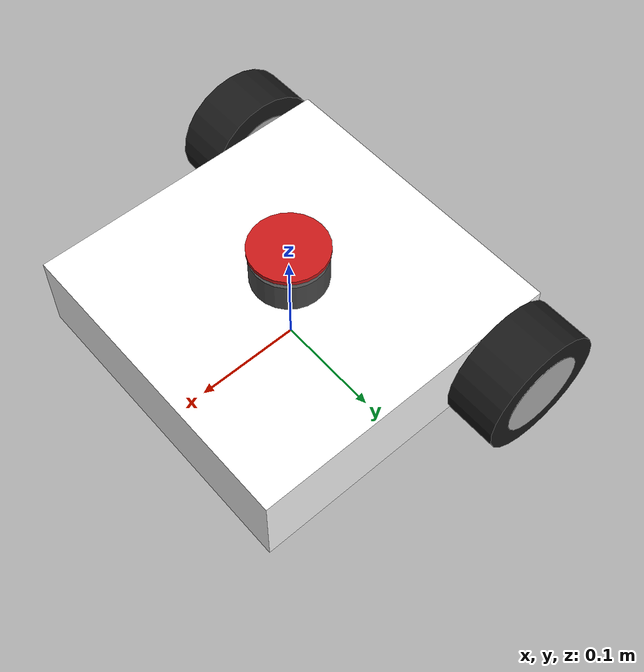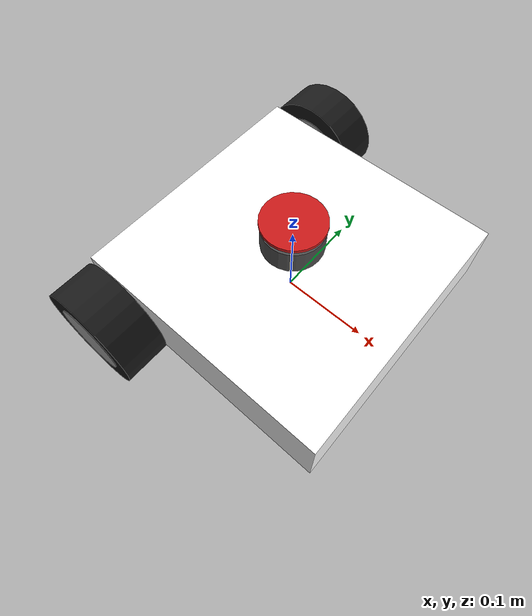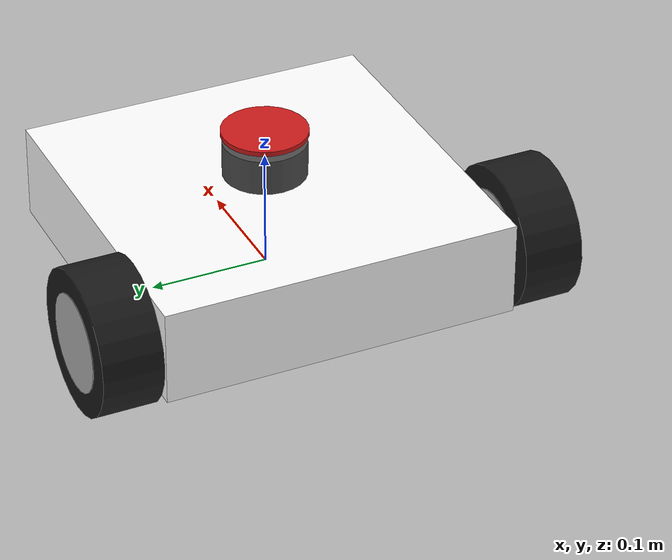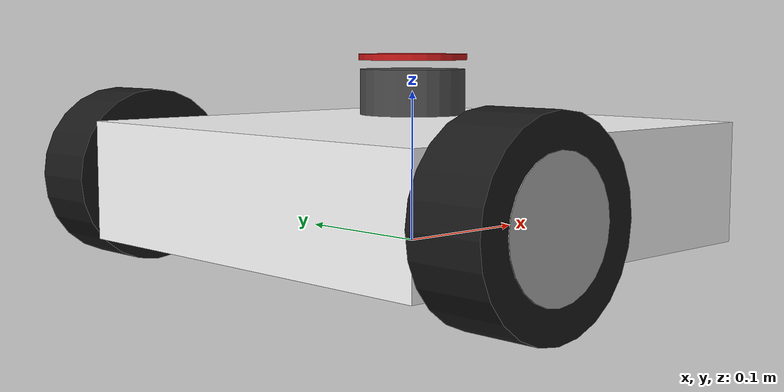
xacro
<?xml version="1.0"?>
<robot name="gslam_bot" xmlns:xacro="http://www.ros.org/wiki/xacro">

  <!-- ================= MATERIALS ================= -->
  <material name="white">  <color rgba="1.0 1.0 1.0 1.0"/> </material>
  <material name="black">  <color rgba="0.1 0.1 0.1 1.0"/> </material>
  <material name="dark_gray"> <color rgba="0.3 0.3 0.3 1.0"/> </material>
  <material name="silver"> <color rgba="0.7 0.7 0.7 1.0"/> </material>
  <material name="red">    <color rgba="0.8 0.1 0.1 1.0"/> </material>

  <!-- ================= BASE LINK ================= -->
  <link name="base_link">
    <inertial>
      <origin xyz="0 0 0.04" rpy="0 0 0"/>
      <mass value="1.5"/>
      <inertia ixx="0.02" ixy="0" ixz="0"
               iyy="0.02" iyz="0" izz="0.02"/>
    </inertial>
    <visual>
      <origin xyz="0 0 0.04" rpy="0 0 0"/>
      <geometry><box size="0.3 0.3 0.08"/></geometry>
      <material name="white"/>
    </visual>
    <visual>
      <origin xyz="0 0 0.06" rpy="0 0 0"/>
      <geometry><box size="0.25 0.25 0.02"/></geometry>
      <material name="silver"/>
    </visual>
    <visual>
      <origin xyz="0 0 0.02" rpy="0 0 0"/>
      <geometry><box size="0.25 0.25 0.02"/></geometry>
      <material name="silver"/>
    </visual>
    <collision>
      <origin xyz="0 0 0.04" rpy="0 0 0"/>
      <geometry><box size="0.3 0.3 0.08"/></geometry>
    </collision>
  </link>

  <!-- ================= LEFT WHEEL ================= -->
  <link name="left_wheel">
    <inertial>
      <origin xyz="0 0 0" rpy="0 0 0"/>
      <mass value="0.2"/>
      <inertia ixx="0.00025" ixy="0" ixz="0"
               iyy="0.00025" iyz="0" izz="0.00025"/>
    </inertial>
    <visual>
      <origin xyz="0 0 0" rpy="0 0 0"/>
      <geometry><cylinder radius="0.06" length="0.05"/></geometry>
      <material name="black"/>
    </visual>
    <visual>
      <origin xyz="0 0 0" rpy="0 0 0"/>
      <geometry><cylinder radius="0.04" length="0.051"/></geometry>
      <material name="silver"/>
    </visual>
    <collision>
      <origin xyz="0 0 0" rpy="0 0 0"/>
      <geometry><cylinder radius="0.06" length="0.05"/></geometry>
    </collision>
  </link>

  <!-- rpy="-1.5707 0 0" tilts cylinder so it lies flat as a wheel -->
  <!-- axis="0 0 1" is Y-axis rolling in the rotated child frame   -->
  <joint name="left_wheel_joint" type="continuous">
    <parent link="base_link"/>
    <child link="left_wheel"/>
    <origin xyz="-0.1 0.18 0.04" rpy="-1.5707 0 0"/>
    <axis xyz="0 0 1"/>
    <limit effort="10" velocity="10"/>
  </joint>

  <!-- ================= RIGHT WHEEL ================= -->
  <link name="right_wheel">
    <inertial>
      <origin xyz="0 0 0" rpy="0 0 0"/>
      <mass value="0.2"/>
      <inertia ixx="0.00025" ixy="0" ixz="0"
               iyy="0.00025" iyz="0" izz="0.00025"/>
    </inertial>
    <visual>
      <origin xyz="0 0 0" rpy="0 0 0"/>
      <geometry><cylinder radius="0.06" length="0.05"/></geometry>
      <material name="black"/>
    </visual>
    <visual>
      <origin xyz="0 0 0" rpy="0 0 0"/>
      <geometry><cylinder radius="0.04" length="0.051"/></geometry>
      <material name="silver"/>
    </visual>
    <collision>
      <origin xyz="0 0 0" rpy="0 0 0"/>
      <geometry><cylinder radius="0.06" length="0.05"/></geometry>
    </collision>
  </link>

  <joint name="right_wheel_joint" type="continuous">
    <parent link="base_link"/>
    <child link="right_wheel"/>
    <origin xyz="-0.1 -0.18 0.04" rpy="-1.5707 0 0"/>
    <axis xyz="0 0 1"/>
    <limit effort="10" velocity="10"/>
  </joint>

  <!-- ================= CASTER WHEELS ================= -->
  <link name="caster_wheel">
    <inertial>
      <origin xyz="0 0 0" rpy="0 0 0"/>
      <mass value="0.05"/>
      <inertia ixx="0.0001" ixy="0" ixz="0"
               iyy="0.0001" iyz="0" izz="0.0001"/>
    </inertial>
    <visual>
      <origin xyz="0 0 0" rpy="0 0 0"/>
      <geometry><sphere radius="0.025"/></geometry>
      <material name="dark_gray"/>
    </visual>
    <collision>
      <origin xyz="0 0 0" rpy="0 0 0"/>
      <geometry><sphere radius="0.025"/></geometry>
    </collision>
  </link>

  <joint name="caster_wheel_joint" type="fixed">
    <parent link="base_link"/>
    <child link="caster_wheel"/>
    <origin xyz="0.12 0 0.02" rpy="0 0 0"/>
  </joint>

  <link name="caster_wheel_rear">
    <inertial>
      <origin xyz="0 0 0" rpy="0 0 0"/>
      <mass value="0.05"/>
      <inertia ixx="0.0001" ixy="0" ixz="0"
               iyy="0.0001" iyz="0" izz="0.0001"/>
    </inertial>
    <visual>
      <origin xyz="0 0 0" rpy="0 0 0"/>
      <geometry><sphere radius="0.025"/></geometry>
      <material name="dark_gray"/>
    </visual>
    <collision>
      <origin xyz="0 0 0" rpy="0 0 0"/>
      <geometry><sphere radius="0.025"/></geometry>
    </collision>
  </link>

  <joint name="caster_wheel_rear_joint" type="fixed">
    <parent link="base_link"/>
    <child link="caster_wheel_rear"/>
    <origin xyz="-0.12 0 0.02" rpy="0 0 0"/>
  </joint>

  <!-- Low friction so casters slide freely -->
  <gazebo reference="caster_wheel">
    <mu1>0.01</mu1>
    <mu2>0.01</mu2>
  </gazebo>
  <gazebo reference="caster_wheel_rear">
    <mu1>0.01</mu1>
    <mu2>0.01</mu2>
  </gazebo>

  <!-- ================= LIDAR ================= -->
  <link name="lidar_link">
    <inertial>
      <origin xyz="0 0 0" rpy="0 0 0"/>
      <mass value="0.05"/>
      <inertia ixx="0.00002" ixy="0" ixz="0"
               iyy="0.00002" iyz="0" izz="0.00002"/>
    </inertial>
    <visual>
      <origin xyz="0 0 0" rpy="0 0 0"/>
      <geometry><cylinder radius="0.035" length="0.03"/></geometry>
      <material name="dark_gray"/>
    </visual>
    <visual>
      <origin xyz="0 0 0.023" rpy="0 0 0"/>
      <geometry><cylinder radius="0.036" length="0.004"/></geometry>
      <material name="red"/>
    </visual>
    <collision>
      <origin xyz="0 0 0" rpy="0 0 0"/>
      <geometry><cylinder radius="0.035" length="0.03"/></geometry>
    </collision>
  </link>

  <joint name="lidar_joint" type="fixed">
    <parent link="base_link"/>
    <child link="lidar_link"/>
    <origin xyz="0 0 0.10" rpy="0 0 0"/>
  </joint>

  <gazebo reference="lidar_link">
    <sensor type="ray" name="lidar_sensor">
      <pose>0 0 0 0 0 0</pose>
      <visualize>true</visualize>
      <update_rate>10</update_rate>
      <ray>
        <scan>
          <horizontal>
            <samples>360</samples>
            <resolution>1</resolution>
            <min_angle>-3.14159</min_angle>
            <max_angle>3.14159</max_angle>
          </horizontal>
        </scan>
        <range>
          <min>0.20</min>
          <max>10.0</max>
          <resolution>0.01</resolution>
        </range>
      </ray>
      <plugin name="gazebo_ros_lidar" filename="libgazebo_ros_ray_sensor.so">
        <ros>
          <namespace>/</namespace>
          <remapping>~/out:=scan</remapping>
        </ros>
        <output_type>sensor_msgs/LaserScan</output_type>
        <frame_name>lidar_link</frame_name>
      </plugin>
    </sensor>
  </gazebo>

  <!-- ================= ROS2 CONTROL ================= -->
  <gazebo>
    <plugin filename="libgazebo_ros2_control.so" name="gazebo_ros2_control">
      <parameters>$(find gslam_bot)/config/diff_drive_controllers.yaml</parameters>
    </plugin>
  </gazebo>

  <ros2_control name="GazeboSystem" type="system">
    <hardware>
      <plugin>gazebo_ros2_control/GazeboSystem</plugin>
    </hardware>
    <joint name="left_wheel_joint">
      <command_interface name="velocity"/>
      <state_interface name="velocity"/>
      <state_interface name="position"/>
    </joint>
    <joint name="right_wheel_joint">
      <command_interface name="velocity"/>
      <state_interface name="velocity"/>
      <state_interface name="position"/>
    </joint>
  </ros2_control>

</robot>
